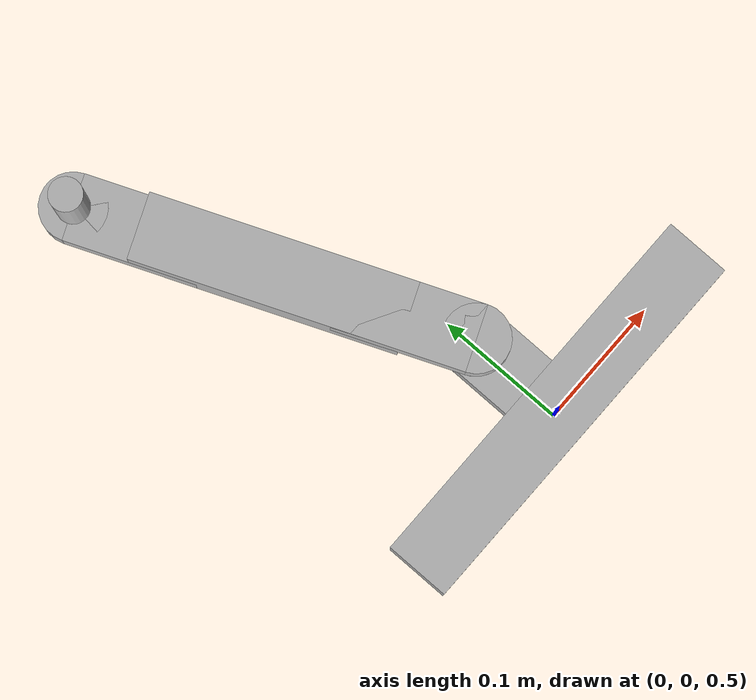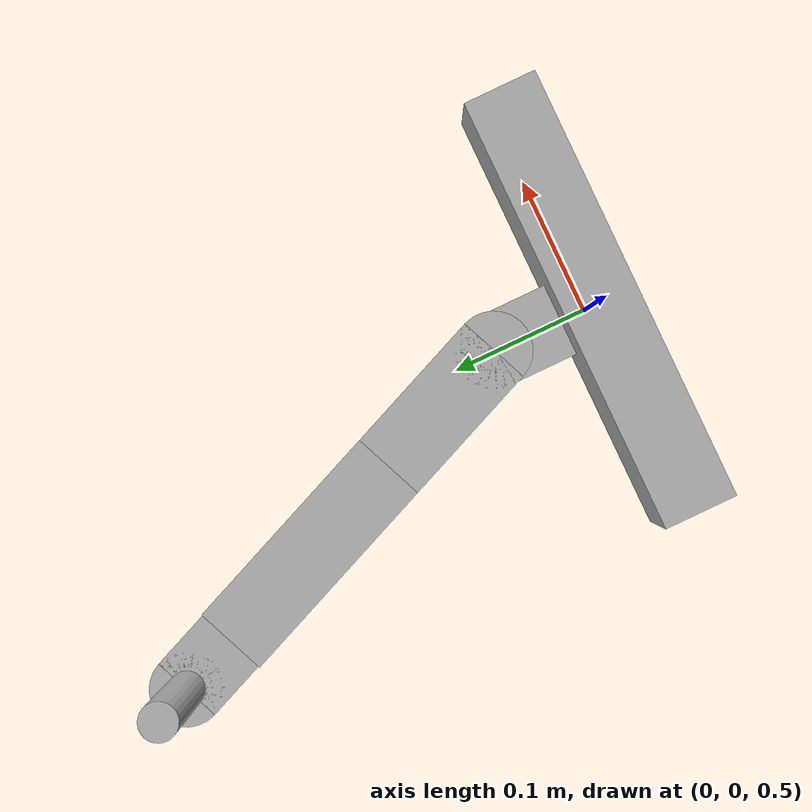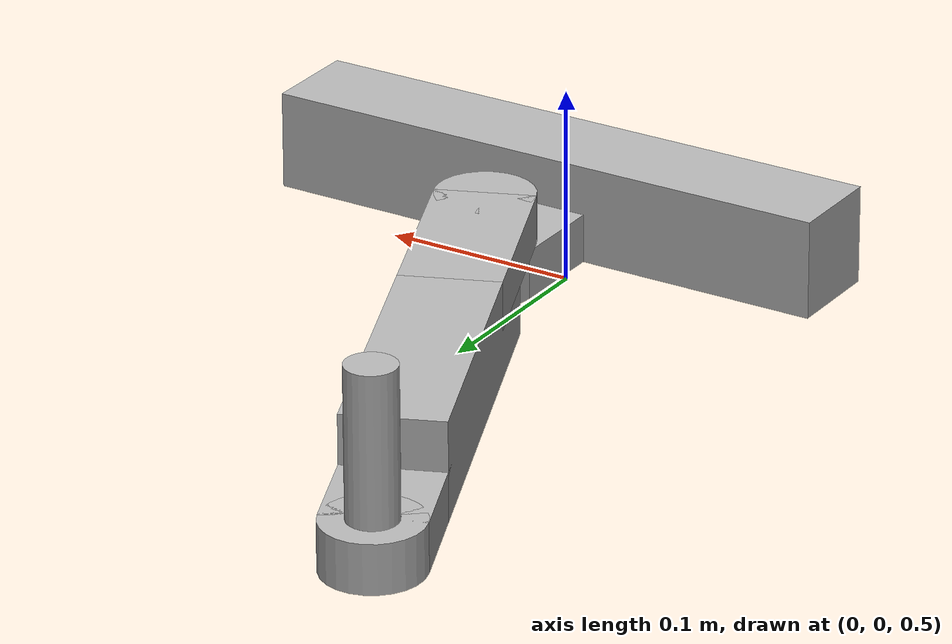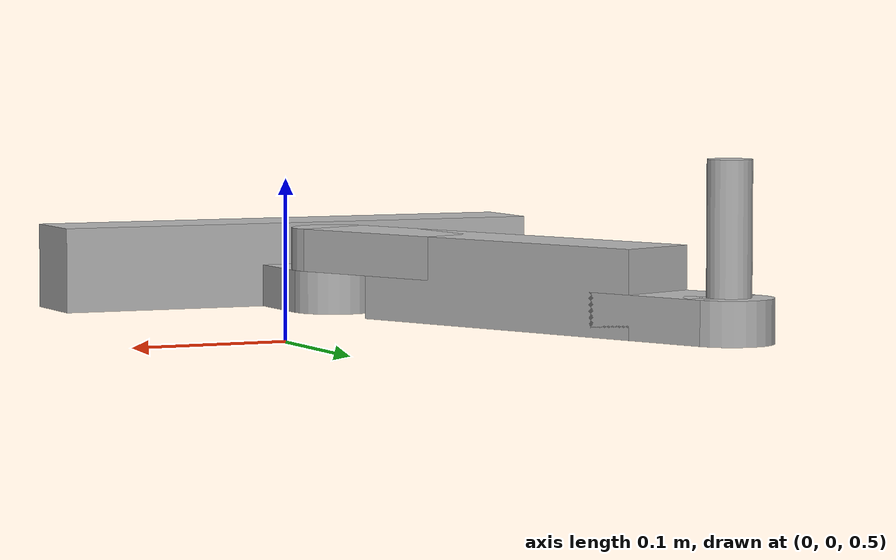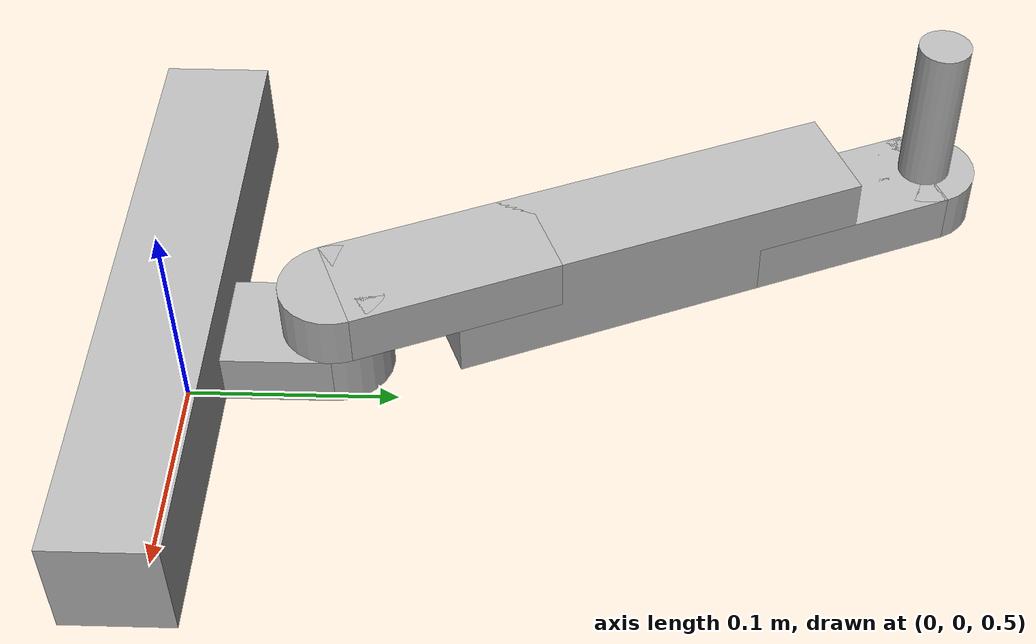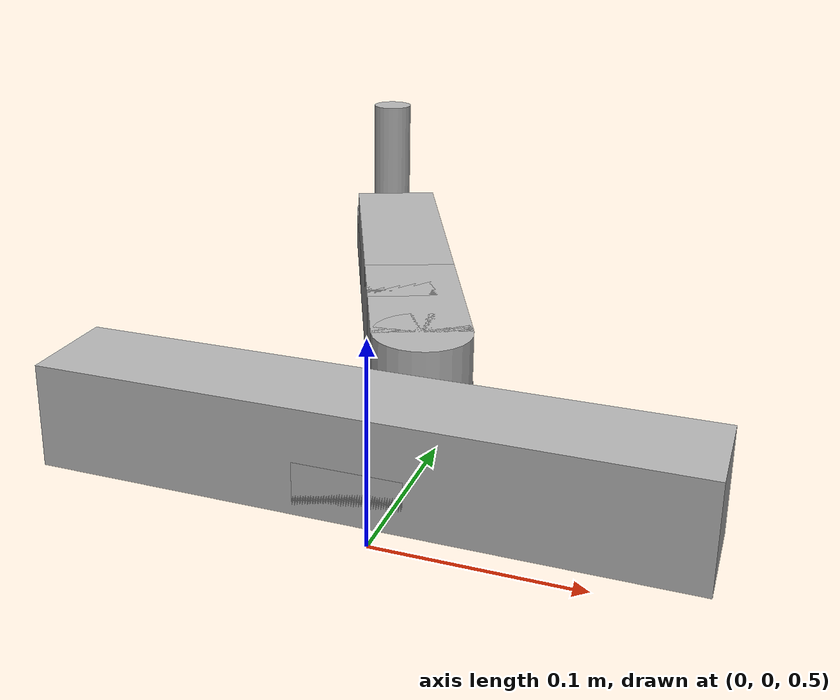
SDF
<sdf version='1.6'>
  <model name='1r_manipulator_scaled_down'>
    <link name='base_link'>
      <pose frame=''>0 0 0.55 0 -0 0</pose>
      <inertial>
        <pose frame=''>0 0 0 0 -0 0</pose>
        <mass>1</mass>
        <inertia>
          <ixx>1</ixx>
          <ixy>0</ixy>
          <ixz>0</ixz>
          <iyy>1</iyy>
          <iyz>0</iyz>
          <izz>1</izz>
        </inertia>
      </inertial>
      <collision name='base_link_collision'>
        <pose frame=''>0 0 0 0 -0 0</pose>
        <geometry>
          <box>
            <size>0.3 0.05 0.05</size>
          </box>
        </geometry>
      </collision>
      <collision name='base_link_collision_1'>
        <pose frame=''>0 0.025 -0.0125 0 -0 0</pose>
        <geometry>
          <box>
            <size>0.05 0.1 0.025</size>
          </box>
        </geometry>
      </collision>
      <collision name='base_link_collision_2'>
        <pose frame=''>0 0.075 -0.0125 0 -0 0</pose>
        <geometry>
          <cylinder>
            <length>0.025</length>
            <radius>0.025</radius>
          </cylinder>
        </geometry>
      </collision>
      <visual name='base_link_visual'>
        <pose frame=''>0 0 0 0 -0 0</pose>
        <geometry>
          <box>
            <size>0.3 0.05 0.05</size>
          </box>
        </geometry>
      </visual>
      <visual name='base_link_visual_1'>
        <pose frame=''>0 0.025 -0.0125 0 -0 0</pose>
        <geometry>
          <box>
            <size>0.05 0.1 0.025</size>
          </box>
        </geometry>
      </visual>
      <visual name='base_link_visual_2'>
        <pose frame=''>0 0.075 -0.0125 0 -0 0</pose>
        <geometry>
          <cylinder>
            <length>0.025</length>
            <radius>0.025</radius>
          </cylinder>
        </geometry>
      </visual>
    </link>
    <joint name='anchor' type='revolute'>
      <child>base_link</child>
      <parent>world</parent>
      <axis>
        <limit>
          <lower>0</lower>
          <upper>0</upper>
        </limit>
        <dynamics>
          <damping>0</damping>
          <friction>0</friction>
          <spring_reference>0</spring_reference>
          <spring_stiffness>0</spring_stiffness>
        </dynamics>
        <use_parent_model_frame>1</use_parent_model_frame>
        <xyz>0 0 1</xyz>
      </axis>
    </joint>
    <link name='first_link'>
      <pose frame=''>0 0.075 0.55 0 -0 0.3925</pose>
      <inertial>
        <pose frame=''>0 0.1375 0 0 -0 0</pose>
        <mass>1</mass>
        <inertia>
          <ixx>1</ixx>
          <ixy>0</ixy>
          <ixz>0</ixz>
          <iyy>1</iyy>
          <iyz>0</iyz>
          <izz>1</izz>
        </inertia>
      </inertial>
      <collision name='first_link_collision'>
        <pose frame=''>0 0 0.0125 0 -0 0</pose>
        <geometry>
          <cylinder>
            <length>0.025</length>
            <radius>0.025</radius>
          </cylinder>
        </geometry>
      </collision>
      <collision name='first_link_collision_1'>
        <pose frame=''>0 0.05 0.0125 0 -0 0</pose>
        <geometry>
          <box>
            <size>0.05 0.1 0.025</size>
          </box>
        </geometry>
      </collision>
      <collision name='first_link_collision_2'>
        <pose frame=''>0 0.15 0 0 -0 0</pose>
        <geometry>
          <box>
            <size>0.05 0.2 0.05</size>
          </box>
        </geometry>
      </collision>
      <collision name='first_link_collision_3'>
        <pose frame=''>0 0.25 -0.0125 0 -0 0</pose>
        <geometry>
          <box>
            <size>0.05 0.1 0.025</size>
          </box>
        </geometry>
      </collision>
      <collision name='first_link_collision_4'>
        <pose frame=''>0 0.3 -0.0125 0 -0 0</pose>
        <geometry>
          <cylinder>
            <length>0.025</length>
            <radius>0.025</radius>
          </cylinder>
        </geometry>
      </collision>
      <visual name='first_link_visual'>
        <pose frame=''>0 0 0.0125 0 -0 0</pose>
        <geometry>
          <cylinder>
            <length>0.025</length>
            <radius>0.025</radius>
          </cylinder>
        </geometry>
      </visual>
      <visual name='first_link_visual_1'>
        <pose frame=''>0 0.05 0.0125 0 -0 0</pose>
        <geometry>
          <box>
            <size>0.05 0.1 0.025</size>
          </box>
        </geometry>
      </visual>
      <visual name='first_link_visual_2'>
        <pose frame=''>0 0.15 0 0 -0 0</pose>
        <geometry>
          <box>
            <size>0.05 0.2 0.05</size>
          </box>
        </geometry>
      </visual>
      <visual name='first_link_visual_3'>
        <pose frame=''>0 0.25 -0.0125 0 -0 0</pose>
        <geometry>
          <box>
            <size>0.05 0.1 0.025</size>
          </box>
        </geometry>
      </visual>
      <visual name='first_link_visual_4'>
        <pose frame=''>0 0.3 -0.0125 0 -0 0</pose>
        <geometry>
          <cylinder>
            <length>0.025</length>
            <radius>0.025</radius>
          </cylinder>
        </geometry>
      </visual>
    </link>
    <joint name='first_joint' type='revolute'>
      <child>first_link</child>
      <parent>base_link</parent>
      <axis>
        <xyz>0 0 1</xyz>
        <limit>
          <lower>-0.785</lower>
          <upper>0</upper>
          <effort>30</effort>
          <velocity>1</velocity>
        </limit>
        <dynamics>
          <spring_reference>0</spring_reference>
          <spring_stiffness>0</spring_stiffness>
        </dynamics>
        <use_parent_model_frame>1</use_parent_model_frame>
      </axis>
    </joint>
    <link name='handle_link'>
      <pose frame=''>-0.11475 0.352187 0.55 0 -0 0.3925</pose>
      <inertial>
        <pose frame=''>0 0 0.0125 0 -0 0</pose>
        <mass>1</mass>
        <inertia>
          <ixx>1</ixx>
          <ixy>0</ixy>
          <ixz>0</ixz>
          <iyy>1</iyy>
          <iyz>0</iyz>
          <izz>1</izz>
        </inertia>
      </inertial>
      <collision name='handle_link_collision'>
        <pose frame=''>0 0 0.025 0 -0 0</pose>
        <geometry>
          <cylinder>
            <length>0.1</length>
            <radius>0.0125</radius>
          </cylinder>
        </geometry>
      </collision>
      <visual name='handle_link_visual'>
        <pose frame=''>0 0 0.025 0 -0 0</pose>
        <geometry>
          <cylinder>
            <length>0.1</length>
            <radius>0.0125</radius>
          </cylinder>
        </geometry>
      </visual>
    </link>
    <joint name='handle_joint' type='revolute'>
      <child>handle_link</child>
      <parent>first_link</parent>
      <axis>
        <xyz>0 0 1</xyz>
        <limit>
          <lower>-3.14</lower>
          <upper>3.14</upper>
          <effort>30</effort>
          <velocity>1</velocity>
        </limit>
        <dynamics>
          <spring_reference>0</spring_reference>
          <spring_stiffness>0</spring_stiffness>
        </dynamics>
        <use_parent_model_frame>1</use_parent_model_frame>
      </axis>
    </joint>
  </model>
</sdf>
